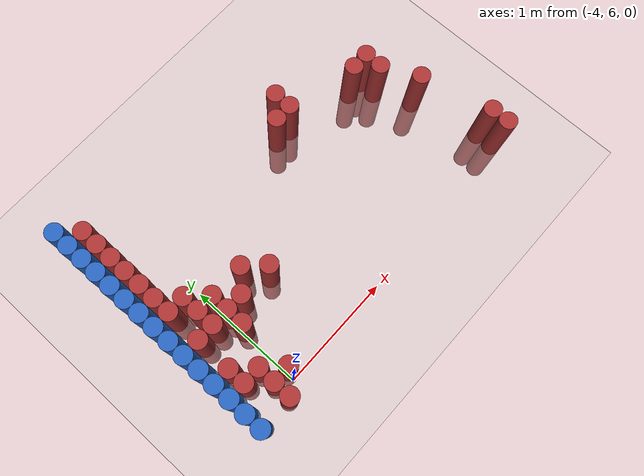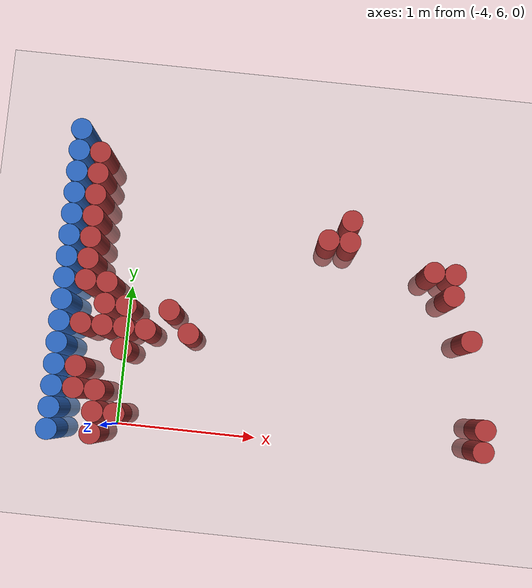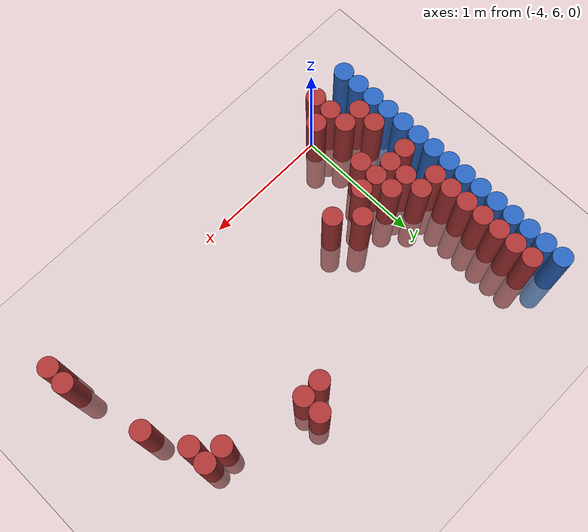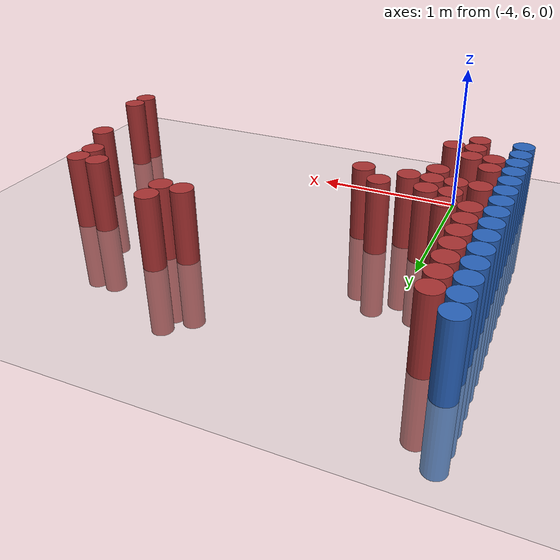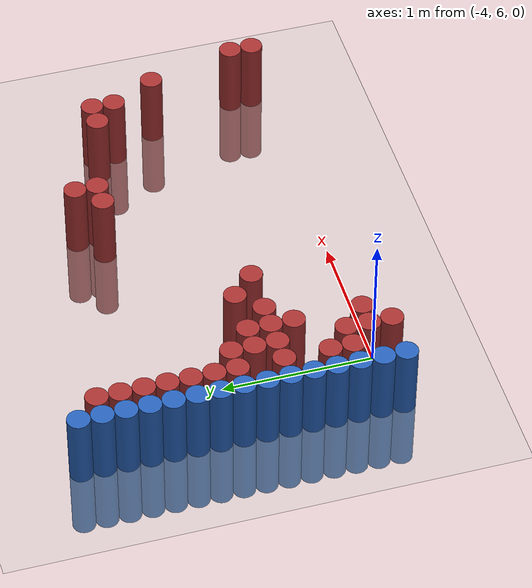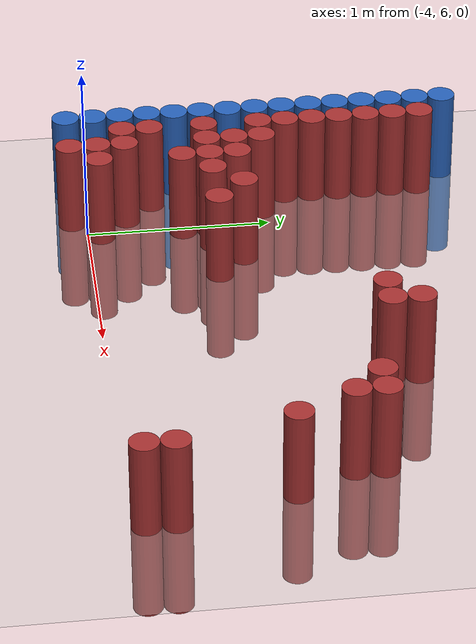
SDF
<sdf version="1.6">
 <world name="default">
  <model name="ground_plane">
   <static>1</static>
   <link name="link">
    <collision name="collision">
     <geometry><plane><normal>0 0 1</normal><size>100 100</size></plane></geometry>
     <surface><friction><ode><mu>100</mu><mu2>50</mu2></ode></friction></surface>
    </collision>
    <visual name="visual">
     <cast_shadows>0</cast_shadows>
     <geometry><plane><normal>0 0 1</normal><size>100 100</size></plane></geometry>
     <material>
      <script><uri>file://media/materials/scripts/gazebo.material</uri><name>Gazebo/Grey</name></script>
     </material>
    </visual>
   </link>
  </model>
  <model name="unit_cylinder_101">
   <static>1</static>
   <pose>-4.425000 5.925000 0.000000 0.000000 0.000000 0.000000</pose>
   <link name="link">
    <inertial>
     <mass>1</mass>
     <inertia><ixx>0.145833</ixx><ixy>0</ixy><ixz>0</ixz><iyy>0.145833</iyy><iyz>0</iyz><izz>0.125</izz></inertia>
    </inertial>
    <collision name="collision">
     <geometry><cylinder><radius>0.075000</radius><length>1</length></cylinder></geometry>
    </collision>
    <visual name="visual">
     <geometry><cylinder><radius>0.075000</radius><length>1</length></cylinder></geometry>
     <material>
      <ambient>0.152000 0.379000 0.720000 1</ambient>
      <diffuse>0.152000 0.379000 0.720000 1</diffuse>
     </material>
     <material>
      <script><name>Gazebo/Grey</name><uri>file://media/materials/scripts/gazebo.material</uri></script>
     </material>
    </visual>
   </link>
  </model>
  <model name="unit_cylinder_102">
   <static>1</static>
   <pose>-4.425000 6.075000 0.000000 0.000000 0.000000 0.000000</pose>
   <link name="link">
    <inertial>
     <mass>1</mass>
     <inertia><ixx>0.145833</ixx><ixy>0</ixy><ixz>0</ixz><iyy>0.145833</iyy><iyz>0</iyz><izz>0.125</izz></inertia>
    </inertial>
    <collision name="collision">
     <geometry><cylinder><radius>0.075000</radius><length>1</length></cylinder></geometry>
    </collision>
    <visual name="visual">
     <geometry><cylinder><radius>0.075000</radius><length>1</length></cylinder></geometry>
     <material>
      <ambient>0.152000 0.379000 0.720000 1</ambient>
      <diffuse>0.152000 0.379000 0.720000 1</diffuse>
     </material>
     <material>
      <script><name>Gazebo/Grey</name><uri>file://media/materials/scripts/gazebo.material</uri></script>
     </material>
    </visual>
   </link>
  </model>
  <model name="unit_cylinder_103">
   <static>1</static>
   <pose>-4.425000 6.225000 0.000000 0.000000 0.000000 0.000000</pose>
   <link name="link">
    <inertial>
     <mass>1</mass>
     <inertia><ixx>0.145833</ixx><ixy>0</ixy><ixz>0</ixz><iyy>0.145833</iyy><iyz>0</iyz><izz>0.125</izz></inertia>
    </inertial>
    <collision name="collision">
     <geometry><cylinder><radius>0.075000</radius><length>1</length></cylinder></geometry>
    </collision>
    <visual name="visual">
     <geometry><cylinder><radius>0.075000</radius><length>1</length></cylinder></geometry>
     <material>
      <ambient>0.152000 0.379000 0.720000 1</ambient>
      <diffuse>0.152000 0.379000 0.720000 1</diffuse>
     </material>
     <material>
      <script><name>Gazebo/Grey</name><uri>file://media/materials/scripts/gazebo.material</uri></script>
     </material>
    </visual>
   </link>
  </model>
  <model name="unit_cylinder_104">
   <static>1</static>
   <pose>-4.425000 6.375000 0.000000 0.000000 0.000000 0.000000</pose>
   <link name="link">
    <inertial>
     <mass>1</mass>
     <inertia><ixx>0.145833</ixx><ixy>0</ixy><ixz>0</ixz><iyy>0.145833</iyy><iyz>0</iyz><izz>0.125</izz></inertia>
    </inertial>
    <collision name="collision">
     <geometry><cylinder><radius>0.075000</radius><length>1</length></cylinder></geometry>
    </collision>
    <visual name="visual">
     <geometry><cylinder><radius>0.075000</radius><length>1</length></cylinder></geometry>
     <material>
      <ambient>0.152000 0.379000 0.720000 1</ambient>
      <diffuse>0.152000 0.379000 0.720000 1</diffuse>
     </material>
     <material>
      <script><name>Gazebo/Grey</name><uri>file://media/materials/scripts/gazebo.material</uri></script>
     </material>
    </visual>
   </link>
  </model>
  <model name="unit_cylinder_105">
   <static>1</static>
   <pose>-4.425000 6.525000 0.000000 0.000000 0.000000 0.000000</pose>
   <link name="link">
    <inertial>
     <mass>1</mass>
     <inertia><ixx>0.145833</ixx><ixy>0</ixy><ixz>0</ixz><iyy>0.145833</iyy><iyz>0</iyz><izz>0.125</izz></inertia>
    </inertial>
    <collision name="collision">
     <geometry><cylinder><radius>0.075000</radius><length>1</length></cylinder></geometry>
    </collision>
    <visual name="visual">
     <geometry><cylinder><radius>0.075000</radius><length>1</length></cylinder></geometry>
     <material>
      <ambient>0.152000 0.379000 0.720000 1</ambient>
      <diffuse>0.152000 0.379000 0.720000 1</diffuse>
     </material>
     <material>
      <script><name>Gazebo/Grey</name><uri>file://media/materials/scripts/gazebo.material</uri></script>
     </material>
    </visual>
   </link>
  </model>
  <model name="unit_cylinder_106">
   <static>1</static>
   <pose>-4.425000 6.675000 0.000000 0.000000 0.000000 0.000000</pose>
   <link name="link">
    <inertial>
     <mass>1</mass>
     <inertia><ixx>0.145833</ixx><ixy>0</ixy><ixz>0</ixz><iyy>0.145833</iyy><iyz>0</iyz><izz>0.125</izz></inertia>
    </inertial>
    <collision name="collision">
     <geometry><cylinder><radius>0.075000</radius><length>1</length></cylinder></geometry>
    </collision>
    <visual name="visual">
     <geometry><cylinder><radius>0.075000</radius><length>1</length></cylinder></geometry>
     <material>
      <ambient>0.152000 0.379000 0.720000 1</ambient>
      <diffuse>0.152000 0.379000 0.720000 1</diffuse>
     </material>
     <material>
      <script><name>Gazebo/Grey</name><uri>file://media/materials/scripts/gazebo.material</uri></script>
     </material>
    </visual>
   </link>
  </model>
  <model name="unit_cylinder_107">
   <static>1</static>
   <pose>-4.425000 6.825000 0.000000 0.000000 0.000000 0.000000</pose>
   <link name="link">
    <inertial>
     <mass>1</mass>
     <inertia><ixx>0.145833</ixx><ixy>0</ixy><ixz>0</ixz><iyy>0.145833</iyy><iyz>0</iyz><izz>0.125</izz></inertia>
    </inertial>
    <collision name="collision">
     <geometry><cylinder><radius>0.075000</radius><length>1</length></cylinder></geometry>
    </collision>
    <visual name="visual">
     <geometry><cylinder><radius>0.075000</radius><length>1</length></cylinder></geometry>
     <material>
      <ambient>0.152000 0.379000 0.720000 1</ambient>
      <diffuse>0.152000 0.379000 0.720000 1</diffuse>
     </material>
     <material>
      <script><name>Gazebo/Grey</name><uri>file://media/materials/scripts/gazebo.material</uri></script>
     </material>
    </visual>
   </link>
  </model>
  <model name="unit_cylinder_108">
   <static>1</static>
   <pose>-4.425000 6.975000 0.000000 0.000000 0.000000 0.000000</pose>
   <link name="link">
    <inertial>
     <mass>1</mass>
     <inertia><ixx>0.145833</ixx><ixy>0</ixy><ixz>0</ixz><iyy>0.145833</iyy><iyz>0</iyz><izz>0.125</izz></inertia>
    </inertial>
    <collision name="collision">
     <geometry><cylinder><radius>0.075000</radius><length>1</length></cylinder></geometry>
    </collision>
    <visual name="visual">
     <geometry><cylinder><radius>0.075000</radius><length>1</length></cylinder></geometry>
     <material>
      <ambient>0.152000 0.379000 0.720000 1</ambient>
      <diffuse>0.152000 0.379000 0.720000 1</diffuse>
     </material>
     <material>
      <script><name>Gazebo/Grey</name><uri>file://media/materials/scripts/gazebo.material</uri></script>
     </material>
    </visual>
   </link>
  </model>
  <model name="unit_cylinder_109">
   <static>1</static>
   <pose>-4.425000 7.125000 0.000000 0.000000 0.000000 0.000000</pose>
   <link name="link">
    <inertial>
     <mass>1</mass>
     <inertia><ixx>0.145833</ixx><ixy>0</ixy><ixz>0</ixz><iyy>0.145833</iyy><iyz>0</iyz><izz>0.125</izz></inertia>
    </inertial>
    <collision name="collision">
     <geometry><cylinder><radius>0.075000</radius><length>1</length></cylinder></geometry>
    </collision>
    <visual name="visual">
     <geometry><cylinder><radius>0.075000</radius><length>1</length></cylinder></geometry>
     <material>
      <ambient>0.152000 0.379000 0.720000 1</ambient>
      <diffuse>0.152000 0.379000 0.720000 1</diffuse>
     </material>
     <material>
      <script><name>Gazebo/Grey</name><uri>file://media/materials/scripts/gazebo.material</uri></script>
     </material>
    </visual>
   </link>
  </model>
  <model name="unit_cylinder_110">
   <static>1</static>
   <pose>-4.425000 7.275000 0.000000 0.000000 0.000000 0.000000</pose>
   <link name="link">
    <inertial>
     <mass>1</mass>
     <inertia><ixx>0.145833</ixx><ixy>0</ixy><ixz>0</ixz><iyy>0.145833</iyy><iyz>0</iyz><izz>0.125</izz></inertia>
    </inertial>
    <collision name="collision">
     <geometry><cylinder><radius>0.075000</radius><length>1</length></cylinder></geometry>
    </collision>
    <visual name="visual">
     <geometry><cylinder><radius>0.075000</radius><length>1</length></cylinder></geometry>
     <material>
      <ambient>0.152000 0.379000 0.720000 1</ambient>
      <diffuse>0.152000 0.379000 0.720000 1</diffuse>
     </material>
     <material>
      <script><name>Gazebo/Grey</name><uri>file://media/materials/scripts/gazebo.material</uri></script>
     </material>
    </visual>
   </link>
  </model>
  <model name="unit_cylinder_111">
   <static>1</static>
   <pose>-4.425000 7.425000 0.000000 0.000000 0.000000 0.000000</pose>
   <link name="link">
    <inertial>
     <mass>1</mass>
     <inertia><ixx>0.145833</ixx><ixy>0</ixy><ixz>0</ixz><iyy>0.145833</iyy><iyz>0</iyz><izz>0.125</izz></inertia>
    </inertial>
    <collision name="collision">
     <geometry><cylinder><radius>0.075000</radius><length>1</length></cylinder></geometry>
    </collision>
    <visual name="visual">
     <geometry><cylinder><radius>0.075000</radius><length>1</length></cylinder></geometry>
     <material>
      <ambient>0.152000 0.379000 0.720000 1</ambient>
      <diffuse>0.152000 0.379000 0.720000 1</diffuse>
     </material>
     <material>
      <script><name>Gazebo/Grey</name><uri>file://media/materials/scripts/gazebo.material</uri></script>
     </material>
    </visual>
   </link>
  </model>
  <model name="unit_cylinder_112">
   <static>1</static>
   <pose>-4.425000 7.575000 0.000000 0.000000 0.000000 0.000000</pose>
   <link name="link">
    <inertial>
     <mass>1</mass>
     <inertia><ixx>0.145833</ixx><ixy>0</ixy><ixz>0</ixz><iyy>0.145833</iyy><iyz>0</iyz><izz>0.125</izz></inertia>
    </inertial>
    <collision name="collision">
     <geometry><cylinder><radius>0.075000</radius><length>1</length></cylinder></geometry>
    </collision>
    <visual name="visual">
     <geometry><cylinder><radius>0.075000</radius><length>1</length></cylinder></geometry>
     <material>
      <ambient>0.152000 0.379000 0.720000 1</ambient>
      <diffuse>0.152000 0.379000 0.720000 1</diffuse>
     </material>
     <material>
      <script><name>Gazebo/Grey</name><uri>file://media/materials/scripts/gazebo.material</uri></script>
     </material>
    </visual>
   </link>
  </model>
  <model name="unit_cylinder_113">
   <static>1</static>
   <pose>-4.425000 7.725000 0.000000 0.000000 0.000000 0.000000</pose>
   <link name="link">
    <inertial>
     <mass>1</mass>
     <inertia><ixx>0.145833</ixx><ixy>0</ixy><ixz>0</ixz><iyy>0.145833</iyy><iyz>0</iyz><izz>0.125</izz></inertia>
    </inertial>
    <collision name="collision">
     <geometry><cylinder><radius>0.075000</radius><length>1</length></cylinder></geometry>
    </collision>
    <visual name="visual">
     <geometry><cylinder><radius>0.075000</radius><length>1</length></cylinder></geometry>
     <material>
      <ambient>0.152000 0.379000 0.720000 1</ambient>
      <diffuse>0.152000 0.379000 0.720000 1</diffuse>
     </material>
     <material>
      <script><name>Gazebo/Grey</name><uri>file://media/materials/scripts/gazebo.material</uri></script>
     </material>
    </visual>
   </link>
  </model>
  <model name="unit_cylinder_114">
   <static>1</static>
   <pose>-4.425000 7.875000 0.000000 0.000000 0.000000 0.000000</pose>
   <link name="link">
    <inertial>
     <mass>1</mass>
     <inertia><ixx>0.145833</ixx><ixy>0</ixy><ixz>0</ixz><iyy>0.145833</iyy><iyz>0</iyz><izz>0.125</izz></inertia>
    </inertial>
    <collision name="collision">
     <geometry><cylinder><radius>0.075000</radius><length>1</length></cylinder></geometry>
    </collision>
    <visual name="visual">
     <geometry><cylinder><radius>0.075000</radius><length>1</length></cylinder></geometry>
     <material>
      <ambient>0.152000 0.379000 0.720000 1</ambient>
      <diffuse>0.152000 0.379000 0.720000 1</diffuse>
     </material>
     <material>
      <script><name>Gazebo/Grey</name><uri>file://media/materials/scripts/gazebo.material</uri></script>
     </material>
    </visual>
   </link>
  </model>
  <model name="unit_cylinder_115">
   <static>1</static>
   <pose>-4.425000 8.025000 0.000000 0.000000 0.000000 0.000000</pose>
   <link name="link">
    <inertial>
     <mass>1</mass>
     <inertia><ixx>0.145833</ixx><ixy>0</ixy><ixz>0</ixz><iyy>0.145833</iyy><iyz>0</iyz><izz>0.125</izz></inertia>
    </inertial>
    <collision name="collision">
     <geometry><cylinder><radius>0.075000</radius><length>1</length></cylinder></geometry>
    </collision>
    <visual name="visual">
     <geometry><cylinder><radius>0.075000</radius><length>1</length></cylinder></geometry>
     <material>
      <ambient>0.152000 0.379000 0.720000 1</ambient>
      <diffuse>0.152000 0.379000 0.720000 1</diffuse>
     </material>
     <material>
      <script><name>Gazebo/Grey</name><uri>file://media/materials/scripts/gazebo.material</uri></script>
     </material>
    </visual>
   </link>
  </model>
  <model name="unit_cylinder_129">
   <static>1</static>
   <pose>-4.275000 6.225000 0.000000 0.000000 0.000000 0.000000</pose>
   <link name="link">
    <inertial>
     <mass>1</mass>
     <inertia><ixx>0.145833</ixx><ixy>0</ixy><ixz>0</ixz><iyy>0.145833</iyy><iyz>0</iyz><izz>0.125</izz></inertia>
    </inertial>
    <collision name="collision">
     <geometry><cylinder><radius>0.075000</radius><length>1</length></cylinder></geometry>
    </collision>
    <visual name="visual">
     <geometry><cylinder><radius>0.075000</radius><length>1</length></cylinder></geometry>
     <material>
      <ambient>0.648000 0.192000 0.192000 1</ambient>
      <diffuse>0.648000 0.192000 0.192000 1</diffuse>
     </material>
     <material>
      <script><name>Gazebo/Grey</name><uri>file://media/materials/scripts/gazebo.material</uri></script>
     </material>
    </visual>
   </link>
  </model>
  <model name="unit_cylinder_130">
   <static>1</static>
   <pose>-4.275000 6.375000 0.000000 0.000000 0.000000 0.000000</pose>
   <link name="link">
    <inertial>
     <mass>1</mass>
     <inertia><ixx>0.145833</ixx><ixy>0</ixy><ixz>0</ixz><iyy>0.145833</iyy><iyz>0</iyz><izz>0.125</izz></inertia>
    </inertial>
    <collision name="collision">
     <geometry><cylinder><radius>0.075000</radius><length>1</length></cylinder></geometry>
    </collision>
    <visual name="visual">
     <geometry><cylinder><radius>0.075000</radius><length>1</length></cylinder></geometry>
     <material>
      <ambient>0.648000 0.192000 0.192000 1</ambient>
      <diffuse>0.648000 0.192000 0.192000 1</diffuse>
     </material>
     <material>
      <script><name>Gazebo/Grey</name><uri>file://media/materials/scripts/gazebo.material</uri></script>
     </material>
    </visual>
   </link>
  </model>
  <model name="unit_cylinder_131">
   <static>1</static>
   <pose>-4.275000 6.675000 0.000000 0.000000 0.000000 0.000000</pose>
   <link name="link">
    <inertial>
     <mass>1</mass>
     <inertia><ixx>0.145833</ixx><ixy>0</ixy><ixz>0</ixz><iyy>0.145833</iyy><iyz>0</iyz><izz>0.125</izz></inertia>
    </inertial>
    <collision name="collision">
     <geometry><cylinder><radius>0.075000</radius><length>1</length></cylinder></geometry>
    </collision>
    <visual name="visual">
     <geometry><cylinder><radius>0.075000</radius><length>1</length></cylinder></geometry>
     <material>
      <ambient>0.648000 0.192000 0.192000 1</ambient>
      <diffuse>0.648000 0.192000 0.192000 1</diffuse>
     </material>
     <material>
      <script><name>Gazebo/Grey</name><uri>file://media/materials/scripts/gazebo.material</uri></script>
     </material>
    </visual>
   </link>
  </model>
  <model name="unit_cylinder_132">
   <static>1</static>
   <pose>-4.275000 6.975000 0.000000 0.000000 0.000000 0.000000</pose>
   <link name="link">
    <inertial>
     <mass>1</mass>
     <inertia><ixx>0.145833</ixx><ixy>0</ixy><ixz>0</ixz><iyy>0.145833</iyy><iyz>0</iyz><izz>0.125</izz></inertia>
    </inertial>
    <collision name="collision">
     <geometry><cylinder><radius>0.075000</radius><length>1</length></cylinder></geometry>
    </collision>
    <visual name="visual">
     <geometry><cylinder><radius>0.075000</radius><length>1</length></cylinder></geometry>
     <material>
      <ambient>0.648000 0.192000 0.192000 1</ambient>
      <diffuse>0.648000 0.192000 0.192000 1</diffuse>
     </material>
     <material>
      <script><name>Gazebo/Grey</name><uri>file://media/materials/scripts/gazebo.material</uri></script>
     </material>
    </visual>
   </link>
  </model>
  <model name="unit_cylinder_133">
   <static>1</static>
   <pose>-4.275000 7.125000 0.000000 0.000000 0.000000 0.000000</pose>
   <link name="link">
    <inertial>
     <mass>1</mass>
     <inertia><ixx>0.145833</ixx><ixy>0</ixy><ixz>0</ixz><iyy>0.145833</iyy><iyz>0</iyz><izz>0.125</izz></inertia>
    </inertial>
    <collision name="collision">
     <geometry><cylinder><radius>0.075000</radius><length>1</length></cylinder></geometry>
    </collision>
    <visual name="visual">
     <geometry><cylinder><radius>0.075000</radius><length>1</length></cylinder></geometry>
     <material>
      <ambient>0.648000 0.192000 0.192000 1</ambient>
      <diffuse>0.648000 0.192000 0.192000 1</diffuse>
     </material>
     <material>
      <script><name>Gazebo/Grey</name><uri>file://media/materials/scripts/gazebo.material</uri></script>
     </material>
    </visual>
   </link>
  </model>
  <model name="unit_cylinder_134">
   <static>1</static>
   <pose>-4.275000 7.275000 0.000000 0.000000 0.000000 0.000000</pose>
   <link name="link">
    <inertial>
     <mass>1</mass>
     <inertia><ixx>0.145833</ixx><ixy>0</ixy><ixz>0</ixz><iyy>0.145833</iyy><iyz>0</iyz><izz>0.125</izz></inertia>
    </inertial>
    <collision name="collision">
     <geometry><cylinder><radius>0.075000</radius><length>1</length></cylinder></geometry>
    </collision>
    <visual name="visual">
     <geometry><cylinder><radius>0.075000</radius><length>1</length></cylinder></geometry>
     <material>
      <ambient>0.648000 0.192000 0.192000 1</ambient>
      <diffuse>0.648000 0.192000 0.192000 1</diffuse>
     </material>
     <material>
      <script><name>Gazebo/Grey</name><uri>file://media/materials/scripts/gazebo.material</uri></script>
     </material>
    </visual>
   </link>
  </model>
  <model name="unit_cylinder_135">
   <static>1</static>
   <pose>-4.275000 7.425000 0.000000 0.000000 0.000000 0.000000</pose>
   <link name="link">
    <inertial>
     <mass>1</mass>
     <inertia><ixx>0.145833</ixx><ixy>0</ixy><ixz>0</ixz><iyy>0.145833</iyy><iyz>0</iyz><izz>0.125</izz></inertia>
    </inertial>
    <collision name="collision">
     <geometry><cylinder><radius>0.075000</radius><length>1</length></cylinder></geometry>
    </collision>
    <visual name="visual">
     <geometry><cylinder><radius>0.075000</radius><length>1</length></cylinder></geometry>
     <material>
      <ambient>0.648000 0.192000 0.192000 1</ambient>
      <diffuse>0.648000 0.192000 0.192000 1</diffuse>
     </material>
     <material>
      <script><name>Gazebo/Grey</name><uri>file://media/materials/scripts/gazebo.material</uri></script>
     </material>
    </visual>
   </link>
  </model>
  <model name="unit_cylinder_136">
   <static>1</static>
   <pose>-4.275000 7.575000 0.000000 0.000000 0.000000 0.000000</pose>
   <link name="link">
    <inertial>
     <mass>1</mass>
     <inertia><ixx>0.145833</ixx><ixy>0</ixy><ixz>0</ixz><iyy>0.145833</iyy><iyz>0</iyz><izz>0.125</izz></inertia>
    </inertial>
    <collision name="collision">
     <geometry><cylinder><radius>0.075000</radius><length>1</length></cylinder></geometry>
    </collision>
    <visual name="visual">
     <geometry><cylinder><radius>0.075000</radius><length>1</length></cylinder></geometry>
     <material>
      <ambient>0.648000 0.192000 0.192000 1</ambient>
      <diffuse>0.648000 0.192000 0.192000 1</diffuse>
     </material>
     <material>
      <script><name>Gazebo/Grey</name><uri>file://media/materials/scripts/gazebo.material</uri></script>
     </material>
    </visual>
   </link>
  </model>
  <model name="unit_cylinder_137">
   <static>1</static>
   <pose>-4.275000 7.725000 0.000000 0.000000 0.000000 0.000000</pose>
   <link name="link">
    <inertial>
     <mass>1</mass>
     <inertia><ixx>0.145833</ixx><ixy>0</ixy><ixz>0</ixz><iyy>0.145833</iyy><iyz>0</iyz><izz>0.125</izz></inertia>
    </inertial>
    <collision name="collision">
     <geometry><cylinder><radius>0.075000</radius><length>1</length></cylinder></geometry>
    </collision>
    <visual name="visual">
     <geometry><cylinder><radius>0.075000</radius><length>1</length></cylinder></geometry>
     <material>
      <ambient>0.648000 0.192000 0.192000 1</ambient>
      <diffuse>0.648000 0.192000 0.192000 1</diffuse>
     </material>
     <material>
      <script><name>Gazebo/Grey</name><uri>file://media/materials/scripts/gazebo.material</uri></script>
     </material>
    </visual>
   </link>
  </model>
  <model name="unit_cylinder_138">
   <static>1</static>
   <pose>-4.275000 7.875000 0.000000 0.000000 0.000000 0.000000</pose>
   <link name="link">
    <inertial>
     <mass>1</mass>
     <inertia><ixx>0.145833</ixx><ixy>0</ixy><ixz>0</ixz><iyy>0.145833</iyy><iyz>0</iyz><izz>0.125</izz></inertia>
    </inertial>
    <collision name="collision">
     <geometry><cylinder><radius>0.075000</radius><length>1</length></cylinder></geometry>
    </collision>
    <visual name="visual">
     <geometry><cylinder><radius>0.075000</radius><length>1</length></cylinder></geometry>
     <material>
      <ambient>0.648000 0.192000 0.192000 1</ambient>
      <diffuse>0.648000 0.192000 0.192000 1</diffuse>
     </material>
     <material>
      <script><name>Gazebo/Grey</name><uri>file://media/materials/scripts/gazebo.material</uri></script>
     </material>
    </visual>
   </link>
  </model>
  <model name="unit_cylinder_148">
   <static>1</static>
   <pose>-4.125000 5.925000 0.000000 0.000000 0.000000 0.000000</pose>
   <link name="link">
    <inertial>
     <mass>1</mass>
     <inertia><ixx>0.145833</ixx><ixy>0</ixy><ixz>0</ixz><iyy>0.145833</iyy><iyz>0</iyz><izz>0.125</izz></inertia>
    </inertial>
    <collision name="collision">
     <geometry><cylinder><radius>0.075000</radius><length>1</length></cylinder></geometry>
    </collision>
    <visual name="visual">
     <geometry><cylinder><radius>0.075000</radius><length>1</length></cylinder></geometry>
     <material>
      <ambient>0.648000 0.192000 0.192000 1</ambient>
      <diffuse>0.648000 0.192000 0.192000 1</diffuse>
     </material>
     <material>
      <script><name>Gazebo/Grey</name><uri>file://media/materials/scripts/gazebo.material</uri></script>
     </material>
    </visual>
   </link>
  </model>
  <model name="unit_cylinder_149">
   <static>1</static>
   <pose>-4.125000 6.075000 0.000000 0.000000 0.000000 0.000000</pose>
   <link name="link">
    <inertial>
     <mass>1</mass>
     <inertia><ixx>0.145833</ixx><ixy>0</ixy><ixz>0</ixz><iyy>0.145833</iyy><iyz>0</iyz><izz>0.125</izz></inertia>
    </inertial>
    <collision name="collision">
     <geometry><cylinder><radius>0.075000</radius><length>1</length></cylinder></geometry>
    </collision>
    <visual name="visual">
     <geometry><cylinder><radius>0.075000</radius><length>1</length></cylinder></geometry>
     <material>
      <ambient>0.648000 0.192000 0.192000 1</ambient>
      <diffuse>0.648000 0.192000 0.192000 1</diffuse>
     </material>
     <material>
      <script><name>Gazebo/Grey</name><uri>file://media/materials/scripts/gazebo.material</uri></script>
     </material>
    </visual>
   </link>
  </model>
  <model name="unit_cylinder_150">
   <static>1</static>
   <pose>-4.125000 6.225000 0.000000 0.000000 0.000000 0.000000</pose>
   <link name="link">
    <inertial>
     <mass>1</mass>
     <inertia><ixx>0.145833</ixx><ixy>0</ixy><ixz>0</ixz><iyy>0.145833</iyy><iyz>0</iyz><izz>0.125</izz></inertia>
    </inertial>
    <collision name="collision">
     <geometry><cylinder><radius>0.075000</radius><length>1</length></cylinder></geometry>
    </collision>
    <visual name="visual">
     <geometry><cylinder><radius>0.075000</radius><length>1</length></cylinder></geometry>
     <material>
      <ambient>0.648000 0.192000 0.192000 1</ambient>
      <diffuse>0.648000 0.192000 0.192000 1</diffuse>
     </material>
     <material>
      <script><name>Gazebo/Grey</name><uri>file://media/materials/scripts/gazebo.material</uri></script>
     </material>
    </visual>
   </link>
  </model>
  <model name="unit_cylinder_151">
   <static>1</static>
   <pose>-4.125000 6.675000 0.000000 0.000000 0.000000 0.000000</pose>
   <link name="link">
    <inertial>
     <mass>1</mass>
     <inertia><ixx>0.145833</ixx><ixy>0</ixy><ixz>0</ixz><iyy>0.145833</iyy><iyz>0</iyz><izz>0.125</izz></inertia>
    </inertial>
    <collision name="collision">
     <geometry><cylinder><radius>0.075000</radius><length>1</length></cylinder></geometry>
    </collision>
    <visual name="visual">
     <geometry><cylinder><radius>0.075000</radius><length>1</length></cylinder></geometry>
     <material>
      <ambient>0.648000 0.192000 0.192000 1</ambient>
      <diffuse>0.648000 0.192000 0.192000 1</diffuse>
     </material>
     <material>
      <script><name>Gazebo/Grey</name><uri>file://media/materials/scripts/gazebo.material</uri></script>
     </material>
    </visual>
   </link>
  </model>
  <model name="unit_cylinder_152">
   <static>1</static>
   <pose>-4.125000 6.825000 0.000000 0.000000 0.000000 0.000000</pose>
   <link name="link">
    <inertial>
     <mass>1</mass>
     <inertia><ixx>0.145833</ixx><ixy>0</ixy><ixz>0</ixz><iyy>0.145833</iyy><iyz>0</iyz><izz>0.125</izz></inertia>
    </inertial>
    <collision name="collision">
     <geometry><cylinder><radius>0.075000</radius><length>1</length></cylinder></geometry>
    </collision>
    <visual name="visual">
     <geometry><cylinder><radius>0.075000</radius><length>1</length></cylinder></geometry>
     <material>
      <ambient>0.648000 0.192000 0.192000 1</ambient>
      <diffuse>0.648000 0.192000 0.192000 1</diffuse>
     </material>
     <material>
      <script><name>Gazebo/Grey</name><uri>file://media/materials/scripts/gazebo.material</uri></script>
     </material>
    </visual>
   </link>
  </model>
  <model name="unit_cylinder_153">
   <static>1</static>
   <pose>-4.125000 6.975000 0.000000 0.000000 0.000000 0.000000</pose>
   <link name="link">
    <inertial>
     <mass>1</mass>
     <inertia><ixx>0.145833</ixx><ixy>0</ixy><ixz>0</ixz><iyy>0.145833</iyy><iyz>0</iyz><izz>0.125</izz></inertia>
    </inertial>
    <collision name="collision">
     <geometry><cylinder><radius>0.075000</radius><length>1</length></cylinder></geometry>
    </collision>
    <visual name="visual">
     <geometry><cylinder><radius>0.075000</radius><length>1</length></cylinder></geometry>
     <material>
      <ambient>0.648000 0.192000 0.192000 1</ambient>
      <diffuse>0.648000 0.192000 0.192000 1</diffuse>
     </material>
     <material>
      <script><name>Gazebo/Grey</name><uri>file://media/materials/scripts/gazebo.material</uri></script>
     </material>
    </visual>
   </link>
  </model>
  <model name="unit_cylinder_158">
   <static>1</static>
   <pose>-3.975000 6.075000 0.000000 0.000000 0.000000 0.000000</pose>
   <link name="link">
    <inertial>
     <mass>1</mass>
     <inertia><ixx>0.145833</ixx><ixy>0</ixy><ixz>0</ixz><iyy>0.145833</iyy><iyz>0</iyz><izz>0.125</izz></inertia>
    </inertial>
    <collision name="collision">
     <geometry><cylinder><radius>0.075000</radius><length>1</length></cylinder></geometry>
    </collision>
    <visual name="visual">
     <geometry><cylinder><radius>0.075000</radius><length>1</length></cylinder></geometry>
     <material>
      <ambient>0.648000 0.192000 0.192000 1</ambient>
      <diffuse>0.648000 0.192000 0.192000 1</diffuse>
     </material>
     <material>
      <script><name>Gazebo/Grey</name><uri>file://media/materials/scripts/gazebo.material</uri></script>
     </material>
    </visual>
   </link>
  </model>
  <model name="unit_cylinder_159">
   <static>1</static>
   <pose>-3.975000 6.525000 0.000000 0.000000 0.000000 0.000000</pose>
   <link name="link">
    <inertial>
     <mass>1</mass>
     <inertia><ixx>0.145833</ixx><ixy>0</ixy><ixz>0</ixz><iyy>0.145833</iyy><iyz>0</iyz><izz>0.125</izz></inertia>
    </inertial>
    <collision name="collision">
     <geometry><cylinder><radius>0.075000</radius><length>1</length></cylinder></geometry>
    </collision>
    <visual name="visual">
     <geometry><cylinder><radius>0.075000</radius><length>1</length></cylinder></geometry>
     <material>
      <ambient>0.648000 0.192000 0.192000 1</ambient>
      <diffuse>0.648000 0.192000 0.192000 1</diffuse>
     </material>
     <material>
      <script><name>Gazebo/Grey</name><uri>file://media/materials/scripts/gazebo.material</uri></script>
     </material>
    </visual>
   </link>
  </model>
  <model name="unit_cylinder_160">
   <static>1</static>
   <pose>-3.975000 6.675000 0.000000 0.000000 0.000000 0.000000</pose>
   <link name="link">
    <inertial>
     <mass>1</mass>
     <inertia><ixx>0.145833</ixx><ixy>0</ixy><ixz>0</ixz><iyy>0.145833</iyy><iyz>0</iyz><izz>0.125</izz></inertia>
    </inertial>
    <collision name="collision">
     <geometry><cylinder><radius>0.075000</radius><length>1</length></cylinder></geometry>
    </collision>
    <visual name="visual">
     <geometry><cylinder><radius>0.075000</radius><length>1</length></cylinder></geometry>
     <material>
      <ambient>0.648000 0.192000 0.192000 1</ambient>
      <diffuse>0.648000 0.192000 0.192000 1</diffuse>
     </material>
     <material>
      <script><name>Gazebo/Grey</name><uri>file://media/materials/scripts/gazebo.material</uri></script>
     </material>
    </visual>
   </link>
  </model>
  <model name="unit_cylinder_161">
   <static>1</static>
   <pose>-3.975000 6.825000 0.000000 0.000000 0.000000 0.000000</pose>
   <link name="link">
    <inertial>
     <mass>1</mass>
     <inertia><ixx>0.145833</ixx><ixy>0</ixy><ixz>0</ixz><iyy>0.145833</iyy><iyz>0</iyz><izz>0.125</izz></inertia>
    </inertial>
    <collision name="collision">
     <geometry><cylinder><radius>0.075000</radius><length>1</length></cylinder></geometry>
    </collision>
    <visual name="visual">
     <geometry><cylinder><radius>0.075000</radius><length>1</length></cylinder></geometry>
     <material>
      <ambient>0.648000 0.192000 0.192000 1</ambient>
      <diffuse>0.648000 0.192000 0.192000 1</diffuse>
     </material>
     <material>
      <script><name>Gazebo/Grey</name><uri>file://media/materials/scripts/gazebo.material</uri></script>
     </material>
    </visual>
   </link>
  </model>
  <model name="unit_cylinder_162">
   <static>1</static>
   <pose>-3.825000 6.675000 0.000000 0.000000 0.000000 0.000000</pose>
   <link name="link">
    <inertial>
     <mass>1</mass>
     <inertia><ixx>0.145833</ixx><ixy>0</ixy><ixz>0</ixz><iyy>0.145833</iyy><iyz>0</iyz><izz>0.125</izz></inertia>
    </inertial>
    <collision name="collision">
     <geometry><cylinder><radius>0.075000</radius><length>1</length></cylinder></geometry>
    </collision>
    <visual name="visual">
     <geometry><cylinder><radius>0.075000</radius><length>1</length></cylinder></geometry>
     <material>
      <ambient>0.648000 0.192000 0.192000 1</ambient>
      <diffuse>0.648000 0.192000 0.192000 1</diffuse>
     </material>
     <material>
      <script><name>Gazebo/Grey</name><uri>file://media/materials/scripts/gazebo.material</uri></script>
     </material>
    </visual>
   </link>
  </model>
  <model name="unit_cylinder_163">
   <static>1</static>
   <pose>-3.675000 6.825000 0.000000 0.000000 0.000000 0.000000</pose>
   <link name="link">
    <inertial>
     <mass>1</mass>
     <inertia><ixx>0.145833</ixx><ixy>0</ixy><ixz>0</ixz><iyy>0.145833</iyy><iyz>0</iyz><izz>0.125</izz></inertia>
    </inertial>
    <collision name="collision">
     <geometry><cylinder><radius>0.075000</radius><length>1</length></cylinder></geometry>
    </collision>
    <visual name="visual">
     <geometry><cylinder><radius>0.075000</radius><length>1</length></cylinder></geometry>
     <material>
      <ambient>0.648000 0.192000 0.192000 1</ambient>
      <diffuse>0.648000 0.192000 0.192000 1</diffuse>
     </material>
     <material>
      <script><name>Gazebo/Grey</name><uri>file://media/materials/scripts/gazebo.material</uri></script>
     </material>
    </visual>
   </link>
  </model>
  <model name="unit_cylinder_164">
   <static>1</static>
   <pose>-3.525000 6.675000 0.000000 0.000000 0.000000 0.000000</pose>
   <link name="link">
    <inertial>
     <mass>1</mass>
     <inertia><ixx>0.145833</ixx><ixy>0</ixy><ixz>0</ixz><iyy>0.145833</iyy><iyz>0</iyz><izz>0.125</izz></inertia>
    </inertial>
    <collision name="collision">
     <geometry><cylinder><radius>0.075000</radius><length>1</length></cylinder></geometry>
    </collision>
    <visual name="visual">
     <geometry><cylinder><radius>0.075000</radius><length>1</length></cylinder></geometry>
     <material>
      <ambient>0.648000 0.192000 0.192000 1</ambient>
      <diffuse>0.648000 0.192000 0.192000 1</diffuse>
     </material>
     <material>
      <script><name>Gazebo/Grey</name><uri>file://media/materials/scripts/gazebo.material</uri></script>
     </material>
    </visual>
   </link>
  </model>
  <model name="unit_cylinder_174">
   <static>1</static>
   <pose>-2.625000 7.425000 0.000000 0.000000 0.000000 0.000000</pose>
   <link name="link">
    <inertial>
     <mass>1</mass>
     <inertia><ixx>0.145833</ixx><ixy>0</ixy><ixz>0</ixz><iyy>0.145833</iyy><iyz>0</iyz><izz>0.125</izz></inertia>
    </inertial>
    <collision name="collision">
     <geometry><cylinder><radius>0.075000</radius><length>1</length></cylinder></geometry>
    </collision>
    <visual name="visual">
     <geometry><cylinder><radius>0.075000</radius><length>1</length></cylinder></geometry>
     <material>
      <ambient>0.648000 0.192000 0.192000 1</ambient>
      <diffuse>0.648000 0.192000 0.192000 1</diffuse>
     </material>
     <material>
      <script><name>Gazebo/Grey</name><uri>file://media/materials/scripts/gazebo.material</uri></script>
     </material>
    </visual>
   </link>
  </model>
  <model name="unit_cylinder_179">
   <static>1</static>
   <pose>-2.475000 7.425000 0.000000 0.000000 0.000000 0.000000</pose>
   <link name="link">
    <inertial>
     <mass>1</mass>
     <inertia><ixx>0.145833</ixx><ixy>0</ixy><ixz>0</ixz><iyy>0.145833</iyy><iyz>0</iyz><izz>0.125</izz></inertia>
    </inertial>
    <collision name="collision">
     <geometry><cylinder><radius>0.075000</radius><length>1</length></cylinder></geometry>
    </collision>
    <visual name="visual">
     <geometry><cylinder><radius>0.075000</radius><length>1</length></cylinder></geometry>
     <material>
      <ambient>0.648000 0.192000 0.192000 1</ambient>
      <diffuse>0.648000 0.192000 0.192000 1</diffuse>
     </material>
     <material>
      <script><name>Gazebo/Grey</name><uri>file://media/materials/scripts/gazebo.material</uri></script>
     </material>
    </visual>
   </link>
  </model>
  <model name="unit_cylinder_180">
   <static>1</static>
   <pose>-2.475000 7.575000 0.000000 0.000000 0.000000 0.000000</pose>
   <link name="link">
    <inertial>
     <mass>1</mass>
     <inertia><ixx>0.145833</ixx><ixy>0</ixy><ixz>0</ixz><iyy>0.145833</iyy><iyz>0</iyz><izz>0.125</izz></inertia>
    </inertial>
    <collision name="collision">
     <geometry><cylinder><radius>0.075000</radius><length>1</length></cylinder></geometry>
    </collision>
    <visual name="visual">
     <geometry><cylinder><radius>0.075000</radius><length>1</length></cylinder></geometry>
     <material>
      <ambient>0.648000 0.192000 0.192000 1</ambient>
      <diffuse>0.648000 0.192000 0.192000 1</diffuse>
     </material>
     <material>
      <script><name>Gazebo/Grey</name><uri>file://media/materials/scripts/gazebo.material</uri></script>
     </material>
    </visual>
   </link>
  </model>
  <model name="unit_cylinder_189">
   <static>1</static>
   <pose>-1.875000 7.275000 0.000000 0.000000 0.000000 0.000000</pose>
   <link name="link">
    <inertial>
     <mass>1</mass>
     <inertia><ixx>0.145833</ixx><ixy>0</ixy><ixz>0</ixz><iyy>0.145833</iyy><iyz>0</iyz><izz>0.125</izz></inertia>
    </inertial>
    <collision name="collision">
     <geometry><cylinder><radius>0.075000</radius><length>1</length></cylinder></geometry>
    </collision>
    <visual name="visual">
     <geometry><cylinder><radius>0.075000</radius><length>1</length></cylinder></geometry>
     <material>
      <ambient>0.648000 0.192000 0.192000 1</ambient>
      <diffuse>0.648000 0.192000 0.192000 1</diffuse>
     </material>
     <material>
      <script><name>Gazebo/Grey</name><uri>file://media/materials/scripts/gazebo.material</uri></script>
     </material>
    </visual>
   </link>
  </model>
  <model name="unit_cylinder_195">
   <static>1</static>
   <pose>-1.725000 7.125000 0.000000 0.000000 0.000000 0.000000</pose>
   <link name="link">
    <inertial>
     <mass>1</mass>
     <inertia><ixx>0.145833</ixx><ixy>0</ixy><ixz>0</ixz><iyy>0.145833</iyy><iyz>0</iyz><izz>0.125</izz></inertia>
    </inertial>
    <collision name="collision">
     <geometry><cylinder><radius>0.075000</radius><length>1</length></cylinder></geometry>
    </collision>
    <visual name="visual">
     <geometry><cylinder><radius>0.075000</radius><length>1</length></cylinder></geometry>
     <material>
      <ambient>0.648000 0.192000 0.192000 1</ambient>
      <diffuse>0.648000 0.192000 0.192000 1</diffuse>
     </material>
     <material>
      <script><name>Gazebo/Grey</name><uri>file://media/materials/scripts/gazebo.material</uri></script>
     </material>
    </visual>
   </link>
  </model>
  <model name="unit_cylinder_196">
   <static>1</static>
   <pose>-1.725000 7.275000 0.000000 0.000000 0.000000 0.000000</pose>
   <link name="link">
    <inertial>
     <mass>1</mass>
     <inertia><ixx>0.145833</ixx><ixy>0</ixy><ixz>0</ixz><iyy>0.145833</iyy><iyz>0</iyz><izz>0.125</izz></inertia>
    </inertial>
    <collision name="collision">
     <geometry><cylinder><radius>0.075000</radius><length>1</length></cylinder></geometry>
    </collision>
    <visual name="visual">
     <geometry><cylinder><radius>0.075000</radius><length>1</length></cylinder></geometry>
     <material>
      <ambient>0.648000 0.192000 0.192000 1</ambient>
      <diffuse>0.648000 0.192000 0.192000 1</diffuse>
     </material>
     <material>
      <script><name>Gazebo/Grey</name><uri>file://media/materials/scripts/gazebo.material</uri></script>
     </material>
    </visual>
   </link>
  </model>
  <model name="unit_cylinder_205">
   <static>1</static>
   <pose>-1.575000 6.825000 0.000000 0.000000 0.000000 0.000000</pose>
   <link name="link">
    <inertial>
     <mass>1</mass>
     <inertia><ixx>0.145833</ixx><ixy>0</ixy><ixz>0</ixz><iyy>0.145833</iyy><iyz>0</iyz><izz>0.125</izz></inertia>
    </inertial>
    <collision name="collision">
     <geometry><cylinder><radius>0.075000</radius><length>1</length></cylinder></geometry>
    </collision>
    <visual name="visual">
     <geometry><cylinder><radius>0.075000</radius><length>1</length></cylinder></geometry>
     <material>
      <ambient>0.648000 0.192000 0.192000 1</ambient>
      <diffuse>0.648000 0.192000 0.192000 1</diffuse>
     </material>
     <material>
      <script><name>Gazebo/Grey</name><uri>file://media/materials/scripts/gazebo.material</uri></script>
     </material>
    </visual>
   </link>
  </model>
  <model name="unit_cylinder_215">
   <static>1</static>
   <pose>-1.425000 6.075000 0.000000 0.000000 0.000000 0.000000</pose>
   <link name="link">
    <inertial>
     <mass>1</mass>
     <inertia><ixx>0.145833</ixx><ixy>0</ixy><ixz>0</ixz><iyy>0.145833</iyy><iyz>0</iyz><izz>0.125</izz></inertia>
    </inertial>
    <collision name="collision">
     <geometry><cylinder><radius>0.075000</radius><length>1</length></cylinder></geometry>
    </collision>
    <visual name="visual">
     <geometry><cylinder><radius>0.075000</radius><length>1</length></cylinder></geometry>
     <material>
      <ambient>0.648000 0.192000 0.192000 1</ambient>
      <diffuse>0.648000 0.192000 0.192000 1</diffuse>
     </material>
     <material>
      <script><name>Gazebo/Grey</name><uri>file://media/materials/scripts/gazebo.material</uri></script>
     </material>
    </visual>
   </link>
  </model>
  <model name="unit_cylinder_216">
   <static>1</static>
   <pose>-1.425000 6.225000 0.000000 0.000000 0.000000 0.000000</pose>
   <link name="link">
    <inertial>
     <mass>1</mass>
     <inertia><ixx>0.145833</ixx><ixy>0</ixy><ixz>0</ixz><iyy>0.145833</iyy><iyz>0</iyz><izz>0.125</izz></inertia>
    </inertial>
    <collision name="collision">
     <geometry><cylinder><radius>0.075000</radius><length>1</length></cylinder></geometry>
    </collision>
    <visual name="visual">
     <geometry><cylinder><radius>0.075000</radius><length>1</length></cylinder></geometry>
     <material>
      <ambient>0.648000 0.192000 0.192000 1</ambient>
      <diffuse>0.648000 0.192000 0.192000 1</diffuse>
     </material>
     <material>
      <script><name>Gazebo/Grey</name><uri>file://media/materials/scripts/gazebo.material</uri></script>
     </material>
    </visual>
   </link>
  </model>
 </world>
</sdf>
